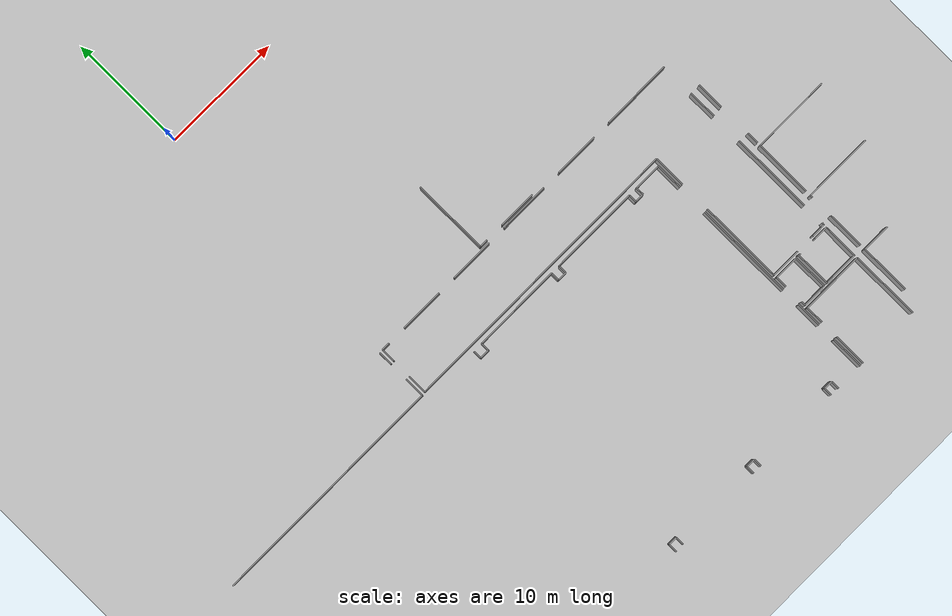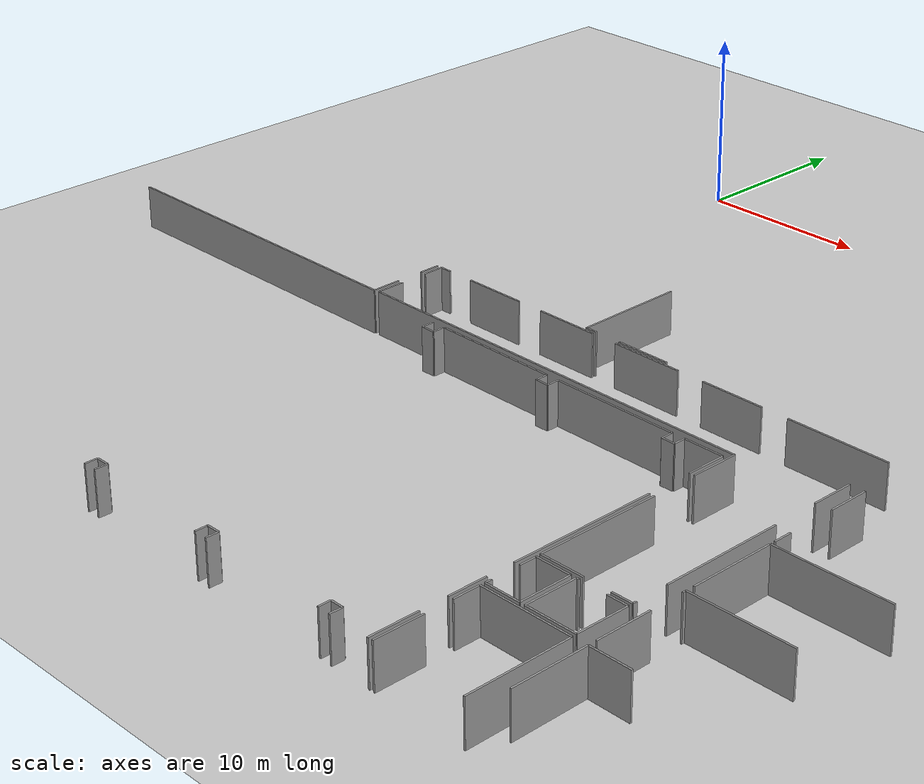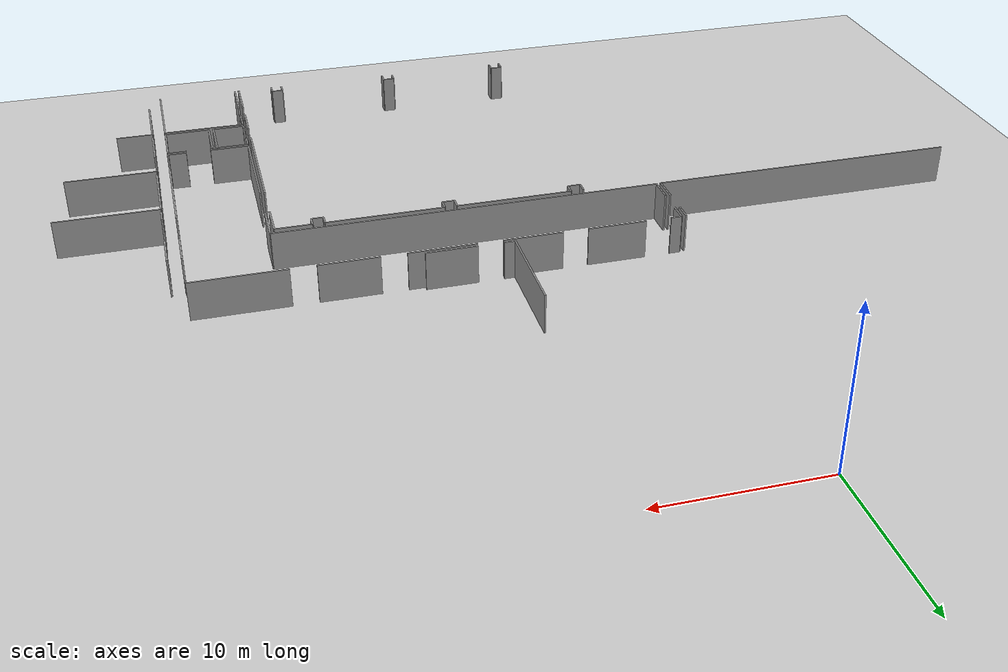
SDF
<sdf version="1.6">
 <world name="default">
  <model name="ground_plane">
   <static>1</static>
   <link name="link">
    <collision name="collision">
     <geometry><plane><normal>0 0 1</normal><size>100 100</size></plane></geometry>
     <surface><friction><ode><mu>100</mu><mu2>50</mu2></ode></friction></surface>
    </collision>
    <visual name="visual">
     <cast_shadows>0</cast_shadows>
     <geometry><plane><normal>0 0 1</normal><size>100 100</size></plane></geometry>
     <material>
      <script><uri>file://media/materials/scripts/gazebo.material</uri><name>Gazebo/Grey</name></script>
     </material>
    </visual>
   </link>
  </model>
  <model name="50025631">
   <static>1</static>
   <link name="Wall_255">
    <collision name="Wall_255_Collision">
     <geometry><box><size>1.02633467325 0.1 2.5</size></box></geometry>
     <pose>0.513167336623 0 1.25 0 0 0</pose>
    </collision>
    <visual name="Wall_255_Visual">
     <pose>0.513167336623 0 1.25 0 0 0</pose>
     <geometry><box><size>1.02633467325 0.1 2.5</size></box></geometry>
     <material>
      <script><uri>file://media/materials/scripts/gazebo.material</uri><name>Gazebo/Grey</name></script>
      <ambient>1 1 1 1</ambient>
     </material>
    </visual>
    <pose>86.3816654284 -79.814101465 0 0 0 1.57079632679</pose>
   </link>
   <link name="Wall_256">
    <collision name="Wall_256_Collision">
     <geometry><box><size>2.32522400666 0.1 2.5</size></box></geometry>
     <pose>1.16261200333 0 1.25 0 0 0</pose>
    </collision>
    <visual name="Wall_256_Visual">
     <pose>1.16261200333 0 1.25 0 0 0</pose>
     <geometry><box><size>2.32522400666 0.1 2.5</size></box></geometry>
     <material>
      <script><uri>file://media/materials/scripts/gazebo.material</uri><name>Gazebo/Grey</name></script>
      <ambient>1 1 1 1</ambient>
     </material>
    </visual>
    <pose>86.3816654284 -76.0045595118 0 0 0 1.57079632679</pose>
   </link>
   <link name="Wall_295">
    <collision name="Wall_295_Collision">
     <geometry><box><size>4.82444609552 0.1 2.5</size></box></geometry>
     <pose>2.41222304776 0 1.25 0 0 0</pose>
    </collision>
    <visual name="Wall_295_Visual">
     <pose>2.41222304776 0 1.25 0 0 0</pose>
     <geometry><box><size>4.82444609552 0.1 2.5</size></box></geometry>
     <material>
      <script><uri>file://media/materials/scripts/gazebo.material</uri><name>Gazebo/Grey</name></script>
      <ambient>1 1 1 1</ambient>
     </material>
    </visual>
    <pose>86.3706159151 -84.9218977221 0 0 0 1.57079632679</pose>
   </link>
   <link name="Wall_296">
    <collision name="Wall_296_Collision">
     <geometry><box><size>6.54042280264 0.1 2.5</size></box></geometry>
     <pose>3.27021140132 0 1.25 0 0 0</pose>
    </collision>
    <visual name="Wall_296_Visual">
     <pose>3.27021140132 0 1.25 0 0 0</pose>
     <geometry><box><size>6.54042280264 0.1 2.5</size></box></geometry>
     <material>
      <script><uri>file://media/materials/scripts/gazebo.material</uri><name>Gazebo/Grey</name></script>
      <ambient>1 1 1 1</ambient>
     </material>
    </visual>
    <pose>86.3706159151 -80.0974516266 0 0 0 0.0</pose>
   </link>
   <link name="Wall_303">
    <collision name="Wall_303_Collision">
     <geometry><box><size>3.12536117303 0.1 2.5</size></box></geometry>
     <pose>1.56268058651 0 1.25 0 0 0</pose>
    </collision>
    <visual name="Wall_303_Visual">
     <pose>1.56268058651 0 1.25 0 0 0</pose>
     <geometry><box><size>3.12536117303 0.1 2.5</size></box></geometry>
     <material>
      <script><uri>file://media/materials/scripts/gazebo.material</uri><name>Gazebo/Grey</name></script>
      <ambient>1 1 1 1</ambient>
     </material>
    </visual>
    <pose>86.3567722721 -90.636147149 0 0 0 1.57079632679</pose>
   </link>
   <link name="Wall_304">
    <collision name="Wall_304_Collision">
     <geometry><box><size>0.198764232599 0.1 2.5</size></box></geometry>
     <pose>0.0993821162993 0 1.25 0 0 0</pose>
    </collision>
    <visual name="Wall_304_Visual">
     <pose>0.0993821162993 0 1.25 0 0 0</pose>
     <geometry><box><size>0.198764232599 0.1 2.5</size></box></geometry>
     <material>
      <script><uri>file://media/materials/scripts/gazebo.material</uri><name>Gazebo/Grey</name></script>
      <ambient>1 1 1 1</ambient>
     </material>
    </visual>
    <pose>86.3567722721 -85.5890597118 0 0 0 1.57079632679</pose>
   </link>
   <link name="Wall_305">
    <collision name="Wall_305_Collision">
     <geometry><box><size>5.82931677176 0.1 2.5</size></box></geometry>
     <pose>2.91465838588 0 1.25 0 0 0</pose>
    </collision>
    <visual name="Wall_305_Visual">
     <pose>2.91465838588 0 1.25 0 0 0</pose>
     <geometry><box><size>5.82931677176 0.1 2.5</size></box></geometry>
     <material>
      <script><uri>file://media/materials/scripts/gazebo.material</uri><name>Gazebo/Grey</name></script>
      <ambient>1 1 1 1</ambient>
     </material>
    </visual>
    <pose>86.3567722721 -85.3902954792 0 0 0 0.0</pose>
   </link>
   <link name="Wall_362">
    <collision name="Wall_362_Collision">
     <geometry><box><size>4.23259860421 0.1 2.5</size></box></geometry>
     <pose>2.1162993021 0 1.25 0 0 0</pose>
    </collision>
    <visual name="Wall_362_Visual">
     <pose>2.1162993021 0 1.25 0 0 0</pose>
     <geometry><box><size>4.23259860421 0.1 2.5</size></box></geometry>
     <material>
      <script><uri>file://media/materials/scripts/gazebo.material</uri><name>Gazebo/Grey</name></script>
      <ambient>1 1 1 1</ambient>
     </material>
    </visual>
    <pose>86.3627415493 -95.3252049558 0 0 0 1.57079632679</pose>
   </link>
   <link name="Wall_363">
    <collision name="Wall_363_Collision">
     <geometry><box><size>2.36078565849 0.1 2.5</size></box></geometry>
     <pose>1.18039282925 0 1.25 0 0 0</pose>
    </collision>
    <visual name="Wall_363_Visual">
     <pose>1.18039282925 0 1.25 0 0 0</pose>
     <geometry><box><size>2.36078565849 0.1 2.5</size></box></geometry>
     <material>
      <script><uri>file://media/materials/scripts/gazebo.material</uri><name>Gazebo/Grey</name></script>
      <ambient>1 1 1 1</ambient>
     </material>
    </visual>
    <pose>86.3627415493 -91.0926063516 0 0 0 0.0</pose>
   </link>
   <link name="Wall_375">
    <collision name="Wall_375_Collision">
     <geometry><box><size>1.17645564636 0.1 2.5</size></box></geometry>
     <pose>0.588227823182 0 1.25 0 0 0</pose>
    </collision>
    <visual name="Wall_375_Visual">
     <pose>0.588227823182 0 1.25 0 0 0</pose>
     <geometry><box><size>1.17645564636 0.1 2.5</size></box></geometry>
     <material>
      <script><uri>file://media/materials/scripts/gazebo.material</uri><name>Gazebo/Grey</name></script>
      <ambient>1 1 1 1</ambient>
     </material>
    </visual>
    <pose>85.4992284392 -87.6450312117 0 0 0 3.14159265359</pose>
   </link>
   <link name="Wall_376">
    <collision name="Wall_376_Collision">
     <geometry><box><size>2.50582639564 0.1 2.5</size></box></geometry>
     <pose>1.25291319782 0 1.25 0 0 0</pose>
    </collision>
    <visual name="Wall_376_Visual">
     <pose>1.25291319782 0 1.25 0 0 0</pose>
     <geometry><box><size>2.50582639564 0.1 2.5</size></box></geometry>
     <material>
      <script><uri>file://media/materials/scripts/gazebo.material</uri><name>Gazebo/Grey</name></script>
      <ambient>1 1 1 1</ambient>
     </material>
    </visual>
    <pose>82.7245305544 -87.6450312117 0 0 0 3.14159265359</pose>
   </link>
   <link name="Wall_377">
    <collision name="Wall_377_Collision">
     <geometry><box><size>7.00475637093 0.1 2.5</size></box></geometry>
     <pose>3.50237818547 0 1.25 0 0 0</pose>
    </collision>
    <visual name="Wall_377_Visual">
     <pose>3.50237818547 0 1.25 0 0 0</pose>
     <geometry><box><size>7.00475637093 0.1 2.5</size></box></geometry>
     <material>
      <script><uri>file://media/materials/scripts/gazebo.material</uri><name>Gazebo/Grey</name></script>
      <ambient>1 1 1 1</ambient>
     </material>
    </visual>
    <pose>80.2187041588 -87.6450312117 0 0 0 1.57079632679</pose>
   </link>
   <link name="Wall_378">
    <collision name="Wall_378_Collision">
     <geometry><box><size>2.73113486121 0.1 2.5</size></box></geometry>
     <pose>1.36556743061 0 1.25 0 0 0</pose>
    </collision>
    <visual name="Wall_378_Visual">
     <pose>1.36556743061 0 1.25 0 0 0</pose>
     <geometry><box><size>2.73113486121 0.1 2.5</size></box></geometry>
     <material>
      <script><uri>file://media/materials/scripts/gazebo.material</uri><name>Gazebo/Grey</name></script>
      <ambient>1 1 1 1</ambient>
     </material>
    </visual>
    <pose>80.2187041588 -78.0371619262 0 0 0 1.57079632679</pose>
   </link>
   <link name="Wall_379">
    <collision name="Wall_379_Collision">
     <geometry><box><size>24.5162027776 0.1 2.5</size></box></geometry>
     <pose>12.2581013888 0 1.25 0 0 0</pose>
    </collision>
    <visual name="Wall_379_Visual">
     <pose>12.2581013888 0 1.25 0 0 0</pose>
     <geometry><box><size>24.5162027776 0.1 2.5</size></box></geometry>
     <material>
      <script><uri>file://media/materials/scripts/gazebo.material</uri><name>Gazebo/Grey</name></script>
      <ambient>1 1 1 1</ambient>
     </material>
    </visual>
    <pose>80.2187041588 -75.306027065 0 0 0 3.14159265359</pose>
   </link>
   <link name="Wall_380">
    <collision name="Wall_380_Collision">
     <geometry><box><size>1.64777453913 0.1 2.5</size></box></geometry>
     <pose>0.823887269564 0 1.25 0 0 0</pose>
    </collision>
    <visual name="Wall_380_Visual">
     <pose>0.823887269564 0 1.25 0 0 0</pose>
     <geometry><box><size>1.64777453913 0.1 2.5</size></box></geometry>
     <material>
      <script><uri>file://media/materials/scripts/gazebo.material</uri><name>Gazebo/Grey</name></script>
      <ambient>1 1 1 1</ambient>
     </material>
    </visual>
    <pose>55.7025013812 -75.306027065 0 0 0 1.57079632679</pose>
   </link>
   <link name="Wall_381">
    <collision name="Wall_381_Collision">
     <geometry><box><size>1.19271240149 0.1 2.5</size></box></geometry>
     <pose>0.596356200746 0 1.25 0 0 0</pose>
    </collision>
    <visual name="Wall_381_Visual">
     <pose>0.596356200746 0 1.25 0 0 0</pose>
     <geometry><box><size>1.19271240149 0.1 2.5</size></box></geometry>
     <material>
      <script><uri>file://media/materials/scripts/gazebo.material</uri><name>Gazebo/Grey</name></script>
      <ambient>1 1 1 1</ambient>
     </material>
    </visual>
    <pose>55.7025013812 -72.0601372934 0 0 0 1.57079632679</pose>
   </link>
   <link name="Wall_382">
    <collision name="Wall_382_Collision">
     <geometry><box><size>0.684942815594 0.1 2.5</size></box></geometry>
     <pose>0.342471407797 0 1.25 0 0 0</pose>
    </collision>
    <visual name="Wall_382_Visual">
     <pose>0.342471407797 0 1.25 0 0 0</pose>
     <geometry><box><size>0.684942815594 0.1 2.5</size></box></geometry>
     <material>
      <script><uri>file://media/materials/scripts/gazebo.material</uri><name>Gazebo/Grey</name></script>
      <ambient>1 1 1 1</ambient>
     </material>
    </visual>
    <pose>55.7025013812 -70.8674248919 0 0 0 0.0</pose>
   </link>
   <link name="Wall_383">
    <collision name="Wall_383_Collision">
     <geometry><box><size>3.68774329568 0.1 2.5</size></box></geometry>
     <pose>1.84387164784 0 1.25 0 0 0</pose>
    </collision>
    <visual name="Wall_383_Visual">
     <pose>1.84387164784 0 1.25 0 0 0</pose>
     <geometry><box><size>3.68774329568 0.1 2.5</size></box></geometry>
     <material>
      <script><uri>file://media/materials/scripts/gazebo.material</uri><name>Gazebo/Grey</name></script>
      <ambient>1 1 1 1</ambient>
     </material>
    </visual>
    <pose>57.9880995472 -70.8674248919 0 0 0 0.0</pose>
   </link>
   <link name="Wall_384">
    <collision name="Wall_384_Collision">
     <geometry><box><size>3.71809770564 0.1 2.5</size></box></geometry>
     <pose>1.85904885282 0 1.25 0 0 0</pose>
    </collision>
    <visual name="Wall_384_Visual">
     <pose>1.85904885282 0 1.25 0 0 0</pose>
     <geometry><box><size>3.71809770564 0.1 2.5</size></box></geometry>
     <material>
      <script><uri>file://media/materials/scripts/gazebo.material</uri><name>Gazebo/Grey</name></script>
      <ambient>1 1 1 1</ambient>
     </material>
    </visual>
    <pose>63.2484298896 -70.8674248919 0 0 0 0.0</pose>
   </link>
   <link name="Wall_385">
    <collision name="Wall_385_Collision">
     <geometry><box><size>4.21900897297 0.1 2.5</size></box></geometry>
     <pose>2.10950448648 0 1.25 0 0 0</pose>
    </collision>
    <visual name="Wall_385_Visual">
     <pose>2.10950448648 0 1.25 0 0 0</pose>
     <geometry><box><size>4.21900897297 0.1 2.5</size></box></geometry>
     <material>
      <script><uri>file://media/materials/scripts/gazebo.material</uri><name>Gazebo/Grey</name></script>
      <ambient>1 1 1 1</ambient>
     </material>
    </visual>
    <pose>68.5433058366 -70.8674248919 0 0 0 0.0</pose>
   </link>
   <link name="Wall_386">
    <collision name="Wall_386_Collision">
     <geometry><box><size>3.72444800061 0.1 2.5</size></box></geometry>
     <pose>1.8622240003 0 1.25 0 0 0</pose>
    </collision>
    <visual name="Wall_386_Visual">
     <pose>1.8622240003 0 1.25 0 0 0</pose>
     <geometry><box><size>3.72444800061 0.1 2.5</size></box></geometry>
     <material>
      <script><uri>file://media/materials/scripts/gazebo.material</uri><name>Gazebo/Grey</name></script>
      <ambient>1 1 1 1</ambient>
     </material>
    </visual>
    <pose>74.3486184933 -70.8674248919 0 0 0 0.0</pose>
   </link>
   <link name="Wall_387">
    <collision name="Wall_387_Collision">
     <geometry><box><size>5.87732500175 0.1 2.5</size></box></geometry>
     <pose>2.93866250087 0 1.25 0 0 0</pose>
    </collision>
    <visual name="Wall_387_Visual">
     <pose>2.93866250087 0 1.25 0 0 0</pose>
     <geometry><box><size>5.87732500175 0.1 2.5</size></box></geometry>
     <material>
      <script><uri>file://media/materials/scripts/gazebo.material</uri><name>Gazebo/Grey</name></script>
      <ambient>1 1 1 1</ambient>
     </material>
    </visual>
    <pose>79.643875458 -70.8674248919 0 0 0 0.0</pose>
   </link>
   <link name="Wall_388">
    <collision name="Wall_388_Collision">
     <geometry><box><size>2.40498371149 0.1 2.5</size></box></geometry>
     <pose>1.20249185575 0 1.25 0 0 0</pose>
    </collision>
    <visual name="Wall_388_Visual">
     <pose>1.20249185575 0 1.25 0 0 0</pose>
     <geometry><box><size>2.40498371149 0.1 2.5</size></box></geometry>
     <material>
      <script><uri>file://media/materials/scripts/gazebo.material</uri><name>Gazebo/Grey</name></script>
      <ambient>1 1 1 1</ambient>
     </material>
    </visual>
    <pose>85.5212004598 -73.6874638827 0 0 0 -1.57079632679</pose>
   </link>
   <link name="Wall_389">
    <collision name="Wall_389_Collision">
     <geometry><box><size>6.87775047151 0.1 2.5</size></box></geometry>
     <pose>3.43887523575 0 1.25 0 0 0</pose>
    </collision>
    <visual name="Wall_389_Visual">
     <pose>3.43887523575 0 1.25 0 0 0</pose>
     <geometry><box><size>6.87775047151 0.1 2.5</size></box></geometry>
     <material>
      <script><uri>file://media/materials/scripts/gazebo.material</uri><name>Gazebo/Grey</name></script>
      <ambient>1 1 1 1</ambient>
     </material>
    </visual>
    <pose>85.5212004598 -78.7334082668 0 0 0 -1.57079632679</pose>
   </link>
   <link name="Wall_390">
    <collision name="Wall_390_Collision">
     <geometry><box><size>0.21272957376 0.1 2.5</size></box></geometry>
     <pose>0.10636478688 0 1.25 0 0 0</pose>
    </collision>
    <visual name="Wall_390_Visual">
     <pose>0.10636478688 0 1.25 0 0 0</pose>
     <geometry><box><size>0.21272957376 0.1 2.5</size></box></geometry>
     <material>
      <script><uri>file://media/materials/scripts/gazebo.material</uri><name>Gazebo/Grey</name></script>
      <ambient>1 1 1 1</ambient>
     </material>
    </visual>
    <pose>85.5212004598 -87.4334393833 0 0 0 -1.67426701645</pose>
   </link>
   <link name="Wall_391">
    <collision name="Wall_391_Collision">
     <geometry><box><size>2.91186425609 0.1 2.5</size></box></geometry>
     <pose>1.45593212805 0 1.25 0 0 0</pose>
    </collision>
    <visual name="Wall_391_Visual">
     <pose>1.45593212805 0 1.25 0 0 0</pose>
     <geometry><box><size>2.91186425609 0.1 2.5</size></box></geometry>
     <material>
      <script><uri>file://media/materials/scripts/gazebo.material</uri><name>Gazebo/Grey</name></script>
      <ambient>1 1 1 1</ambient>
     </material>
    </visual>
    <pose>85.4846227607 -90.8618366323 0 0 0 3.14159265359</pose>
   </link>
   <link name="Wall_392">
    <collision name="Wall_392_Collision">
     <geometry><box><size>2.95314117341 0.1 2.5</size></box></geometry>
     <pose>1.4765705867 0 1.25 0 0 0</pose>
    </collision>
    <visual name="Wall_392_Visual">
     <pose>1.4765705867 0 1.25 0 0 0</pose>
     <geometry><box><size>2.95314117341 0.1 2.5</size></box></geometry>
     <material>
      <script><uri>file://media/materials/scripts/gazebo.material</uri><name>Gazebo/Grey</name></script>
      <ambient>1 1 1 1</ambient>
     </material>
    </visual>
    <pose>82.5727585046 -90.8618366323 0 0 0 1.57079632679</pose>
   </link>
   <link name="Wall_393">
    <collision name="Wall_393_Collision">
     <geometry><box><size>0.15875737428 0.1 2.5</size></box></geometry>
     <pose>0.07937868714 0 1.25 0 0 0</pose>
    </collision>
    <visual name="Wall_393_Visual">
     <pose>0.07937868714 0 1.25 0 0 0</pose>
     <geometry><box><size>0.15875737428 0.1 2.5</size></box></geometry>
     <material>
      <script><uri>file://media/materials/scripts/gazebo.material</uri><name>Gazebo/Grey</name></script>
      <ambient>1 1 1 1</ambient>
     </material>
    </visual>
    <pose>82.5727585046 -87.9086954589 0 0 0 0.0</pose>
   </link>
   <link name="Wall_394">
    <collision name="Wall_394_Collision">
     <geometry><box><size>1.20045976136 0.1 2.5</size></box></geometry>
     <pose>0.600229880678 0 1.25 0 0 0</pose>
    </collision>
    <visual name="Wall_394_Visual">
     <pose>0.600229880678 0 1.25 0 0 0</pose>
     <geometry><box><size>1.20045976136 0.1 2.5</size></box></geometry>
     <material>
      <script><uri>file://media/materials/scripts/gazebo.material</uri><name>Gazebo/Grey</name></script>
      <ambient>1 1 1 1</ambient>
     </material>
    </visual>
    <pose>84.3112152559 -87.9086954589 0 0 0 0.0</pose>
   </link>
   <link name="Wall_395">
    <collision name="Wall_395_Collision">
     <geometry><box><size>2.95326507694 0.1 2.5</size></box></geometry>
     <pose>1.47663253847 0 1.25 0 0 0</pose>
    </collision>
    <visual name="Wall_395_Visual">
     <pose>1.47663253847 0 1.25 0 0 0</pose>
     <geometry><box><size>2.95326507694 0.1 2.5</size></box></geometry>
     <material>
      <script><uri>file://media/materials/scripts/gazebo.material</uri><name>Gazebo/Grey</name></script>
      <ambient>1 1 1 1</ambient>
     </material>
    </visual>
    <pose>85.5116750173 -87.9086954589 0 0 0 -1.5799565729</pose>
   </link>
   <link name="Wall_396">
    <collision name="Wall_396_Collision">
     <geometry><box><size>0.713519142964 0.1 2.5</size></box></geometry>
     <pose>0.356759571482 0 1.25 0 0 0</pose>
    </collision>
    <visual name="Wall_396_Visual">
     <pose>0.356759571482 0 1.25 0 0 0</pose>
     <geometry><box><size>0.713519142964 0.1 2.5</size></box></geometry>
     <material>
      <script><uri>file://media/materials/scripts/gazebo.material</uri><name>Gazebo/Grey</name></script>
      <ambient>1 1 1 1</ambient>
     </material>
    </visual>
    <pose>77.5983184419 -96.9606599227 0 0 0 1.57079632679</pose>
   </link>
   <link name="Wall_397">
    <collision name="Wall_397_Collision">
     <geometry><box><size>0.732570027878 0.1 2.5</size></box></geometry>
     <pose>0.366285013939 0 1.25 0 0 0</pose>
    </collision>
    <visual name="Wall_397_Visual">
     <pose>0.366285013939 0 1.25 0 0 0</pose>
     <geometry><box><size>0.732570027878 0.1 2.5</size></box></geometry>
     <material>
      <script><uri>file://media/materials/scripts/gazebo.material</uri><name>Gazebo/Grey</name></script>
      <ambient>1 1 1 1</ambient>
     </material>
    </visual>
    <pose>77.5983184419 -96.2471407797 0 0 0 3.14159265359</pose>
   </link>
   <link name="Wall_398">
    <collision name="Wall_398_Collision">
     <geometry><box><size>0.688244968979 0.1 2.5</size></box></geometry>
     <pose>0.344122484489 0 1.25 0 0 0</pose>
    </collision>
    <visual name="Wall_398_Visual">
     <pose>0.344122484489 0 1.25 0 0 0</pose>
     <geometry><box><size>0.688244968979 0.1 2.5</size></box></geometry>
     <material>
      <script><uri>file://media/materials/scripts/gazebo.material</uri><name>Gazebo/Grey</name></script>
      <ambient>1 1 1 1</ambient>
     </material>
    </visual>
    <pose>76.865748414 -96.2471407797 0 0 0 -1.57079632679</pose>
   </link>
   <link name="Wall_399">
    <collision name="Wall_399_Collision">
     <geometry><box><size>0.700945558921 0.1 2.5</size></box></geometry>
     <pose>0.350472779461 0 1.25 0 0 0</pose>
    </collision>
    <visual name="Wall_399_Visual">
     <pose>0.350472779461 0 1.25 0 0 0</pose>
     <geometry><box><size>0.700945558921 0.1 2.5</size></box></geometry>
     <material>
      <script><uri>file://media/materials/scripts/gazebo.material</uri><name>Gazebo/Grey</name></script>
      <ambient>1 1 1 1</ambient>
     </material>
    </visual>
    <pose>69.4146933125 -96.9353857487 0 0 0 1.57079632679</pose>
   </link>
   <link name="Wall_400">
    <collision name="Wall_400_Collision">
     <geometry><box><size>0.751366900993 0.1 2.5</size></box></geometry>
     <pose>0.375683450496 0 1.25 0 0 0</pose>
    </collision>
    <visual name="Wall_400_Visual">
     <pose>0.375683450496 0 1.25 0 0 0</pose>
     <geometry><box><size>0.751366900993 0.1 2.5</size></box></geometry>
     <material>
      <script><uri>file://media/materials/scripts/gazebo.material</uri><name>Gazebo/Grey</name></script>
      <ambient>1 1 1 1</ambient>
     </material>
    </visual>
    <pose>69.4146933125 -96.2344401897 0 0 0 3.14159265359</pose>
   </link>
   <link name="Wall_401">
    <collision name="Wall_401_Collision">
     <geometry><box><size>0.69459526395 0.1 2.5</size></box></geometry>
     <pose>0.347297631975 0 1.25 0 0 0</pose>
    </collision>
    <visual name="Wall_401_Visual">
     <pose>0.347297631975 0 1.25 0 0 0</pose>
     <geometry><box><size>0.69459526395 0.1 2.5</size></box></geometry>
     <material>
      <script><uri>file://media/materials/scripts/gazebo.material</uri><name>Gazebo/Grey</name></script>
      <ambient>1 1 1 1</ambient>
     </material>
    </visual>
    <pose>68.6633264115 -96.2344401897 0 0 0 -1.57079632679</pose>
   </link>
   <link name="Wall_402">
    <collision name="Wall_402_Collision">
     <geometry><box><size>0.713519142964 0.1 2.5</size></box></geometry>
     <pose>0.356759571482 0 1.25 0 0 0</pose>
    </collision>
    <visual name="Wall_402_Visual">
     <pose>0.356759571482 0 1.25 0 0 0</pose>
     <geometry><box><size>0.713519142964 0.1 2.5</size></box></geometry>
     <material>
      <script><uri>file://media/materials/scripts/gazebo.material</uri><name>Gazebo/Grey</name></script>
      <ambient>1 1 1 1</ambient>
     </material>
    </visual>
    <pose>61.21227131 -96.9290354537 0 0 0 1.57079632679</pose>
   </link>
   <link name="Wall_403">
    <collision name="Wall_403_Collision">
     <geometry><box><size>0.751366900993 0.1 2.5</size></box></geometry>
     <pose>0.375683450496 0 1.25 0 0 0</pose>
    </collision>
    <visual name="Wall_403_Visual">
     <pose>0.375683450496 0 1.25 0 0 0</pose>
     <geometry><box><size>0.751366900993 0.1 2.5</size></box></geometry>
     <material>
      <script><uri>file://media/materials/scripts/gazebo.material</uri><name>Gazebo/Grey</name></script>
      <ambient>1 1 1 1</ambient>
     </material>
    </visual>
    <pose>61.21227131 -96.2155163107 0 0 0 3.14159265359</pose>
   </link>
   <link name="Wall_404">
    <collision name="Wall_404_Collision">
     <geometry><box><size>0.719869437935 0.1 2.5</size></box></geometry>
     <pose>0.359934718968 0 1.25 0 0 0</pose>
    </collision>
    <visual name="Wall_404_Visual">
     <pose>0.359934718968 0 1.25 0 0 0</pose>
     <geometry><box><size>0.719869437935 0.1 2.5</size></box></geometry>
     <material>
      <script><uri>file://media/materials/scripts/gazebo.material</uri><name>Gazebo/Grey</name></script>
      <ambient>1 1 1 1</ambient>
     </material>
    </visual>
    <pose>60.460904409 -96.2155163107 0 0 0 -1.57079632679</pose>
   </link>
   <link name="Wall_459">
    <collision name="Wall_459_Collision">
     <geometry><box><size>0.705009747703 0.1 2.5</size></box></geometry>
     <pose>0.352504873851 0 1.25 0 0 0</pose>
    </collision>
    <visual name="Wall_459_Visual">
     <pose>0.352504873851 0 1.25 0 0 0</pose>
     <geometry><box><size>0.705009747703 0.1 2.5</size></box></geometry>
     <material>
      <script><uri>file://media/materials/scripts/gazebo.material</uri><name>Gazebo/Grey</name></script>
      <ambient>1 1 1 1</ambient>
     </material>
    </visual>
    <pose>60.4292799401 -75.7842042763 0 0 0 -1.57079632679</pose>
   </link>
   <link name="Wall_460">
    <collision name="Wall_460_Collision">
     <geometry><box><size>0.820839127977 0.1 2.5</size></box></geometry>
     <pose>0.410419563989 0 1.25 0 0 0</pose>
    </collision>
    <visual name="Wall_460_Visual">
     <pose>0.410419563989 0 1.25 0 0 0</pose>
     <geometry><box><size>0.820839127977 0.1 2.5</size></box></geometry>
     <material>
      <script><uri>file://media/materials/scripts/gazebo.material</uri><name>Gazebo/Grey</name></script>
      <ambient>1 1 1 1</ambient>
     </material>
    </visual>
    <pose>60.4292799401 -76.489214024 0 0 0 0.0</pose>
   </link>
   <link name="Wall_461">
    <collision name="Wall_461_Collision">
     <geometry><box><size>0.719742432036 0.1 2.5</size></box></geometry>
     <pose>0.359871216018 0 1.25 0 0 0</pose>
    </collision>
    <visual name="Wall_461_Visual">
     <pose>0.359871216018 0 1.25 0 0 0</pose>
     <geometry><box><size>0.719742432036 0.1 2.5</size></box></geometry>
     <material>
      <script><uri>file://media/materials/scripts/gazebo.material</uri><name>Gazebo/Grey</name></script>
      <ambient>1 1 1 1</ambient>
     </material>
    </visual>
    <pose>61.250119068 -76.489214024 0 0 0 1.57079632679</pose>
   </link>
   <link name="Wall_462">
    <collision name="Wall_462_Collision">
     <geometry><box><size>7.39021927569 0.1 2.5</size></box></geometry>
     <pose>3.69510963784 0 1.25 0 0 0</pose>
    </collision>
    <visual name="Wall_462_Visual">
     <pose>3.69510963784 0 1.25 0 0 0</pose>
     <geometry><box><size>7.39021927569 0.1 2.5</size></box></geometry>
     <material>
      <script><uri>file://media/materials/scripts/gazebo.material</uri><name>Gazebo/Grey</name></script>
      <ambient>1 1 1 1</ambient>
     </material>
    </visual>
    <pose>61.250119068 -75.769471592 0 0 0 0.0</pose>
   </link>
   <link name="Wall_463">
    <collision name="Wall_463_Collision">
     <geometry><box><size>0.722155544125 0.1 2.5</size></box></geometry>
     <pose>0.361077772063 0 1.25 0 0 0</pose>
    </collision>
    <visual name="Wall_463_Visual">
     <pose>0.361077772063 0 1.25 0 0 0</pose>
     <geometry><box><size>0.722155544125 0.1 2.5</size></box></geometry>
     <material>
      <script><uri>file://media/materials/scripts/gazebo.material</uri><name>Gazebo/Grey</name></script>
      <ambient>1 1 1 1</ambient>
     </material>
    </visual>
    <pose>68.6403383437 -75.769471592 0 0 0 -1.57079632679</pose>
   </link>
   <link name="Wall_464">
    <collision name="Wall_464_Collision">
     <geometry><box><size>0.772576886196 0.1 2.5</size></box></geometry>
     <pose>0.386288443098 0 1.25 0 0 0</pose>
    </collision>
    <visual name="Wall_464_Visual">
     <pose>0.386288443098 0 1.25 0 0 0</pose>
     <geometry><box><size>0.772576886196 0.1 2.5</size></box></geometry>
     <material>
      <script><uri>file://media/materials/scripts/gazebo.material</uri><name>Gazebo/Grey</name></script>
      <ambient>1 1 1 1</ambient>
     </material>
    </visual>
    <pose>68.6403383437 -76.4916271361 0 0 0 0.0</pose>
   </link>
   <link name="Wall_465">
    <collision name="Wall_465_Collision">
     <geometry><box><size>0.707549865691 0.1 2.5</size></box></geometry>
     <pose>0.353774932846 0 1.25 0 0 0</pose>
    </collision>
    <visual name="Wall_465_Visual">
     <pose>0.353774932846 0 1.25 0 0 0</pose>
     <geometry><box><size>0.707549865691 0.1 2.5</size></box></geometry>
     <material>
      <script><uri>file://media/materials/scripts/gazebo.material</uri><name>Gazebo/Grey</name></script>
      <ambient>1 1 1 1</ambient>
     </material>
    </visual>
    <pose>69.4129152299 -76.4916271361 0 0 0 1.57079632679</pose>
   </link>
   <link name="Wall_466">
    <collision name="Wall_466_Collision">
     <geometry><box><size>7.43390930509 0.1 2.5</size></box></geometry>
     <pose>3.71695465254 0 1.25 0 0 0</pose>
    </collision>
    <visual name="Wall_466_Visual">
     <pose>3.71695465254 0 1.25 0 0 0</pose>
     <geometry><box><size>7.43390930509 0.1 2.5</size></box></geometry>
     <material>
      <script><uri>file://media/materials/scripts/gazebo.material</uri><name>Gazebo/Grey</name></script>
      <ambient>1 1 1 1</ambient>
     </material>
    </visual>
    <pose>69.4129152299 -75.7840772704 0 0 0 0.0</pose>
   </link>
   <link name="Wall_467">
    <collision name="Wall_467_Collision">
     <geometry><box><size>0.692055145962 0.1 2.5</size></box></geometry>
     <pose>0.346027572981 0 1.25 0 0 0</pose>
    </collision>
    <visual name="Wall_467_Visual">
     <pose>0.346027572981 0 1.25 0 0 0</pose>
     <geometry><box><size>0.692055145962 0.1 2.5</size></box></geometry>
     <material>
      <script><uri>file://media/materials/scripts/gazebo.material</uri><name>Gazebo/Grey</name></script>
      <ambient>1 1 1 1</ambient>
     </material>
    </visual>
    <pose>76.846824535 -75.7840772704 0 0 0 -1.57079632679</pose>
   </link>
   <link name="Wall_468">
    <collision name="Wall_468_Collision">
     <geometry><box><size>0.768766709214 0.1 2.5</size></box></geometry>
     <pose>0.384383354607 0 1.25 0 0 0</pose>
    </collision>
    <visual name="Wall_468_Visual">
     <pose>0.384383354607 0 1.25 0 0 0</pose>
     <geometry><box><size>0.768766709214 0.1 2.5</size></box></geometry>
     <material>
      <script><uri>file://media/materials/scripts/gazebo.material</uri><name>Gazebo/Grey</name></script>
      <ambient>1 1 1 1</ambient>
     </material>
    </visual>
    <pose>76.846824535 -76.4761324164 0 0 0 0.0</pose>
   </link>
   <link name="Wall_469">
    <collision name="Wall_469_Collision">
     <geometry><box><size>0.691928140062 0.1 2.5</size></box></geometry>
     <pose>0.345964070031 0 1.25 0 0 0</pose>
    </collision>
    <visual name="Wall_469_Visual">
     <pose>0.345964070031 0 1.25 0 0 0</pose>
     <geometry><box><size>0.691928140062 0.1 2.5</size></box></geometry>
     <material>
      <script><uri>file://media/materials/scripts/gazebo.material</uri><name>Gazebo/Grey</name></script>
      <ambient>1 1 1 1</ambient>
     </material>
    </visual>
    <pose>77.6155912442 -76.4761324164 0 0 0 1.57079632679</pose>
   </link>
   <link name="Wall_470">
    <collision name="Wall_470_Collision">
     <geometry><box><size>2.32027077658 0.1 2.5</size></box></geometry>
     <pose>1.16013538829 0 1.25 0 0 0</pose>
    </collision>
    <visual name="Wall_470_Visual">
     <pose>1.16013538829 0 1.25 0 0 0</pose>
     <geometry><box><size>2.32027077658 0.1 2.5</size></box></geometry>
     <material>
      <script><uri>file://media/materials/scripts/gazebo.material</uri><name>Gazebo/Grey</name></script>
      <ambient>1 1 1 1</ambient>
     </material>
    </visual>
    <pose>77.6155912442 -75.7842042763 0 0 0 0.0</pose>
   </link>
   <link name="Wall_471">
    <collision name="Wall_471_Collision">
     <geometry><box><size>2.25537076197 0.1 2.5</size></box></geometry>
     <pose>1.12768538099 0 1.25 0 0 0</pose>
    </collision>
    <visual name="Wall_471_Visual">
     <pose>1.12768538099 0 1.25 0 0 0</pose>
     <geometry><box><size>2.25537076197 0.1 2.5</size></box></geometry>
     <material>
      <script><uri>file://media/materials/scripts/gazebo.material</uri><name>Gazebo/Grey</name></script>
      <ambient>1 1 1 1</ambient>
     </material>
    </visual>
    <pose>79.9358620208 -75.7842042763 0 0 0 -1.57079632679</pose>
   </link>
   <link name="Wall_472">
    <collision name="Wall_472_Collision">
     <geometry><box><size>8.26084471624 0.1 2.5</size></box></geometry>
     <pose>4.13042235812 0 1.25 0 0 0</pose>
    </collision>
    <visual name="Wall_472_Visual">
     <pose>4.13042235812 0 1.25 0 0 0</pose>
     <geometry><box><size>8.26084471624 0.1 2.5</size></box></geometry>
     <material>
      <script><uri>file://media/materials/scripts/gazebo.material</uri><name>Gazebo/Grey</name></script>
      <ambient>1 1 1 1</ambient>
     </material>
    </visual>
    <pose>79.9358620208 -80.6524674071 0 0 0 -1.57079632679</pose>
   </link>
   <link name="Wall_473">
    <collision name="Wall_473_Collision">
     <geometry><box><size>2.15668717812 0.1 2.5</size></box></geometry>
     <pose>1.07834358906 0 1.25 0 0 0</pose>
    </collision>
    <visual name="Wall_473_Visual">
     <pose>1.07834358906 0 1.25 0 0 0</pose>
     <geometry><box><size>2.15668717812 0.1 2.5</size></box></geometry>
     <material>
      <script><uri>file://media/materials/scripts/gazebo.material</uri><name>Gazebo/Grey</name></script>
      <ambient>1 1 1 1</ambient>
     </material>
    </visual>
    <pose>79.9358620208 -90.4842480933 0 0 0 -1.57079632679</pose>
   </link>
   <link name="Wall_474">
    <collision name="Wall_474_Collision">
     <geometry><box><size>2.75313008635 0.1 2.5</size></box></geometry>
     <pose>1.37656504318 0 1.25 0 0 0</pose>
    </collision>
    <visual name="Wall_474_Visual">
     <pose>1.37656504318 0 1.25 0 0 0</pose>
     <geometry><box><size>2.75313008635 0.1 2.5</size></box></geometry>
     <material>
      <script><uri>file://media/materials/scripts/gazebo.material</uri><name>Gazebo/Grey</name></script>
      <ambient>1 1 1 1</ambient>
     </material>
    </visual>
    <pose>79.9358620208 -94.2075530408 0 0 0 -1.56669061568</pose>
   </link>
   <link name="Wall_475">
    <collision name="Wall_475_Collision">
     <geometry><box><size>2.03615857957 0.1 2.5</size></box></geometry>
     <pose>1.01807928978 0 1.25 0 0 0</pose>
    </collision>
    <visual name="Wall_475_Visual">
     <pose>1.01807928978 0 1.25 0 0 0</pose>
     <geometry><box><size>2.03615857957 0.1 2.5</size></box></geometry>
     <material>
      <script><uri>file://media/materials/scripts/gazebo.material</uri><name>Gazebo/Grey</name></script>
      <ambient>1 1 1 1</ambient>
     </material>
    </visual>
    <pose>82.2727705702 -90.8570104081 0 0 0 3.14159265359</pose>
   </link>
   <link name="Wall_476">
    <collision name="Wall_476_Collision">
     <geometry><box><size>0.364633937246 0.1 2.5</size></box></geometry>
     <pose>0.182316968623 0 1.25 0 0 0</pose>
    </collision>
    <visual name="Wall_476_Visual">
     <pose>0.182316968623 0 1.25 0 0 0</pose>
     <geometry><box><size>0.364633937246 0.1 2.5</size></box></geometry>
     <material>
      <script><uri>file://media/materials/scripts/gazebo.material</uri><name>Gazebo/Grey</name></script>
      <ambient>1 1 1 1</ambient>
     </material>
    </visual>
    <pose>80.2366119906 -90.8570104081 0 0 0 1.57079632679</pose>
   </link>
   <link name="Wall_477">
    <collision name="Wall_477_Collision">
     <geometry><box><size>0.960291605545 0.1 2.5</size></box></geometry>
     <pose>0.480145802773 0 1.25 0 0 0</pose>
    </collision>
    <visual name="Wall_477_Visual">
     <pose>0.480145802773 0 1.25 0 0 0</pose>
     <geometry><box><size>0.960291605545 0.1 2.5</size></box></geometry>
     <material>
      <script><uri>file://media/materials/scripts/gazebo.material</uri><name>Gazebo/Grey</name></script>
      <ambient>1 1 1 1</ambient>
     </material>
    </visual>
    <pose>80.2366119906 -88.87965556 0 0 0 1.57079632679</pose>
   </link>
   <link name="Wall_478">
    <collision name="Wall_478_Collision">
     <geometry><box><size>2.01939380084 0.1 2.5</size></box></geometry>
     <pose>1.00969690042 0 1.25 0 0 0</pose>
    </collision>
    <visual name="Wall_478_Visual">
     <pose>1.00969690042 0 1.25 0 0 0</pose>
     <geometry><box><size>2.01939380084 0.1 2.5</size></box></geometry>
     <material>
      <script><uri>file://media/materials/scripts/gazebo.material</uri><name>Gazebo/Grey</name></script>
      <ambient>1 1 1 1</ambient>
     </material>
    </visual>
    <pose>80.2366119906 -87.9193639545 0 0 0 0.0</pose>
   </link>
   <link name="Wall_479">
    <collision name="Wall_479_Collision">
     <geometry><box><size>2.93769429053 0.1 2.5</size></box></geometry>
     <pose>1.46884714526 0 1.25 0 0 0</pose>
    </collision>
    <visual name="Wall_479_Visual">
     <pose>1.46884714526 0 1.25 0 0 0</pose>
     <geometry><box><size>2.93769429053 0.1 2.5</size></box></geometry>
     <material>
      <script><uri>file://media/materials/scripts/gazebo.material</uri><name>Gazebo/Grey</name></script>
      <ambient>1 1 1 1</ambient>
     </material>
    </visual>
    <pose>82.2560057915 -87.9193639545 0 0 0 -1.56508951456</pose>
   </link>
   <link name="Wall_480">
    <collision name="Wall_480_Collision">
     <geometry><box><size>2.73685012669 0.1 2.5</size></box></geometry>
     <pose>1.36842506334 0 1.25 0 0 0</pose>
    </collision>
    <visual name="Wall_480_Visual">
     <pose>1.36842506334 0 1.25 0 0 0</pose>
     <geometry><box><size>2.73685012669 0.1 2.5</size></box></geometry>
     <material>
      <script><uri>file://media/materials/scripts/gazebo.material</uri><name>Gazebo/Grey</name></script>
      <ambient>1 1 1 1</ambient>
     </material>
    </visual>
    <pose>80.2275945718 -96.9423710731 0 0 0 1.57079632679</pose>
   </link>
   <link name="Wall_481">
    <collision name="Wall_481_Collision">
     <geometry><box><size>1.4986696132 0.1 2.5</size></box></geometry>
     <pose>0.749334806602 0 1.25 0 0 0</pose>
    </collision>
    <visual name="Wall_481_Visual">
     <pose>0.749334806602 0 1.25 0 0 0</pose>
     <geometry><box><size>1.4986696132 0.1 2.5</size></box></geometry>
     <material>
      <script><uri>file://media/materials/scripts/gazebo.material</uri><name>Gazebo/Grey</name></script>
      <ambient>1 1 1 1</ambient>
     </material>
    </visual>
    <pose>80.2275945718 -92.6296317464 0 0 0 1.57079632679</pose>
   </link>
   <link name="Wall_482">
    <collision name="Wall_482_Collision">
     <geometry><box><size>5.27773015057 0.1 2.5</size></box></geometry>
     <pose>2.63886507528 0 1.25 0 0 0</pose>
    </collision>
    <visual name="Wall_482_Visual">
     <pose>2.63886507528 0 1.25 0 0 0</pose>
     <geometry><box><size>5.27773015057 0.1 2.5</size></box></geometry>
     <material>
      <script><uri>file://media/materials/scripts/gazebo.material</uri><name>Gazebo/Grey</name></script>
      <ambient>1 1 1 1</ambient>
     </material>
    </visual>
    <pose>80.2275945718 -91.1309621332 0 0 0 0.0</pose>
   </link>
   <link name="Wall_483">
    <collision name="Wall_483_Collision">
     <geometry><box><size>5.81141410406 0.1 2.5</size></box></geometry>
     <pose>2.90570705203 0 1.25 0 0 0</pose>
    </collision>
    <visual name="Wall_483_Visual">
     <pose>2.90570705203 0 1.25 0 0 0</pose>
     <geometry><box><size>5.81141410406 0.1 2.5</size></box></geometry>
     <material>
      <script><uri>file://media/materials/scripts/gazebo.material</uri><name>Gazebo/Grey</name></script>
      <ambient>1 1 1 1</ambient>
     </material>
    </visual>
    <pose>85.5053247223 -91.1309621332 0 0 0 -1.56946319823</pose>
   </link>
   <link name="Wall_491">
    <collision name="Wall_491_Collision">
     <geometry><box><size>19.9464035104 0.1 2.5</size></box></geometry>
     <pose>9.97320175522 0 1.25 0 0 0</pose>
    </collision>
    <visual name="Wall_491_Visual">
     <pose>9.97320175522 0 1.25 0 0 0</pose>
     <geometry><box><size>19.9464035104 0.1 2.5</size></box></geometry>
     <material>
      <script><uri>file://media/materials/scripts/gazebo.material</uri><name>Gazebo/Grey</name></script>
      <ambient>1 1 1 1</ambient>
     </material>
    </visual>
    <pose>55.4047995529 -75.3484470354 0 0 0 3.14159265359</pose>
   </link>
   <link name="Wall_499">
    <collision name="Wall_499_Collision">
     <geometry><box><size>1.18128187054 0.1 2.5</size></box></geometry>
     <pose>0.590640935271 0 1.25 0 0 0</pose>
    </collision>
    <visual name="Wall_499_Visual">
     <pose>0.590640935271 0 1.25 0 0 0</pose>
     <geometry><box><size>1.18128187054 0.1 2.5</size></box></geometry>
     <material>
      <script><uri>file://media/materials/scripts/gazebo.material</uri><name>Gazebo/Grey</name></script>
      <ambient>1 1 1 1</ambient>
     </material>
    </visual>
    <pose>55.3903208804 -70.8815225467 0 0 0 -1.57079632679</pose>
   </link>
   <link name="Wall_500">
    <collision name="Wall_500_Collision">
     <geometry><box><size>1.69444756384 0.1 2.5</size></box></geometry>
     <pose>0.847223781921 0 1.25 0 0 0</pose>
    </collision>
    <visual name="Wall_500_Visual">
     <pose>0.847223781921 0 1.25 0 0 0</pose>
     <geometry><box><size>1.69444756384 0.1 2.5</size></box></geometry>
     <material>
      <script><uri>file://media/materials/scripts/gazebo.material</uri><name>Gazebo/Grey</name></script>
      <ambient>1 1 1 1</ambient>
     </material>
    </visual>
    <pose>55.3903208804 -73.6540613311 0 0 0 -1.56225144819</pose>
   </link>
   <link name="Wall_513">
    <collision name="Wall_513_Collision">
     <geometry><box><size>3.18835609914 0.1 2.5</size></box></geometry>
     <pose>1.59417804957 0 1.25 0 0 0</pose>
    </collision>
    <visual name="Wall_513_Visual">
     <pose>1.59417804957 0 1.25 0 0 0</pose>
     <geometry><box><size>3.18835609914 0.1 2.5</size></box></geometry>
     <material>
      <script><uri>file://media/materials/scripts/gazebo.material</uri><name>Gazebo/Grey</name></script>
      <ambient>1 1 1 1</ambient>
     </material>
    </visual>
    <pose>71.7594762277 -70.6139211166 0 0 0 3.14159265359</pose>
   </link>
   <link name="Wall_514">
    <collision name="Wall_514_Collision">
     <geometry><box><size>0.684688803795 0.1 2.5</size></box></geometry>
     <pose>0.342344401897 0 1.25 0 0 0</pose>
    </collision>
    <visual name="Wall_514_Visual">
     <pose>0.342344401897 0 1.25 0 0 0</pose>
     <geometry><box><size>0.684688803795 0.1 2.5</size></box></geometry>
     <material>
      <script><uri>file://media/materials/scripts/gazebo.material</uri><name>Gazebo/Grey</name></script>
      <ambient>1 1 1 1</ambient>
     </material>
    </visual>
    <pose>66.9812602795 -70.6139211166 0 0 0 3.14159265359</pose>
   </link>
   <link name="Wall_515">
    <collision name="Wall_515_Collision">
     <geometry><box><size>6.32222666743 0.1 2.5</size></box></geometry>
     <pose>3.16111333371 0 1.25 0 0 0</pose>
    </collision>
    <visual name="Wall_515_Visual">
     <pose>3.16111333371 0 1.25 0 0 0</pose>
     <geometry><box><size>6.32222666743 0.1 2.5</size></box></geometry>
     <material>
      <script><uri>file://media/materials/scripts/gazebo.material</uri><name>Gazebo/Grey</name></script>
      <ambient>1 1 1 1</ambient>
     </material>
    </visual>
    <pose>66.2965714757 -70.6139211166 0 0 0 1.57079632679</pose>
   </link>
   <pose>-55.9 48.5496043766 0 0 0 0</pose>
  </model>
 </world>
</sdf>
